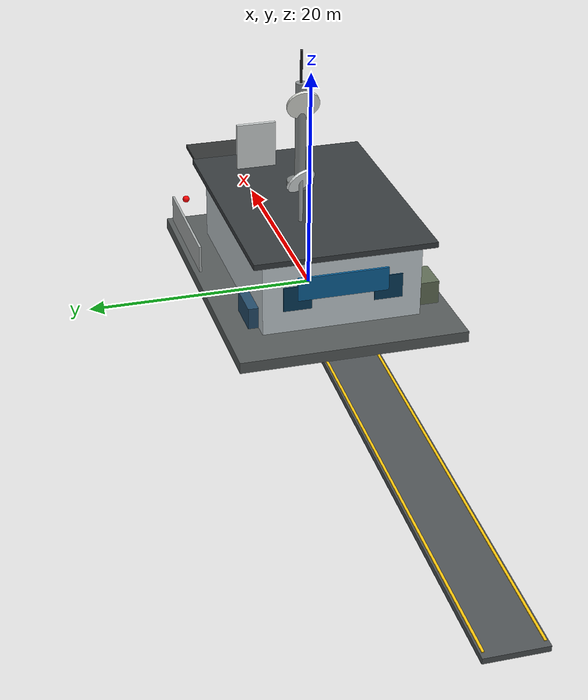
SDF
<?xml version="1.0"?>
<sdf version="1.9">
  <model name="Shore_Command_Base">
    <static>true</static>
    <link name="base_link">
      <!-- 山坡架空基础、控制楼与屋顶。 -->
      <collision name="foundation_collision"><pose>0 0 0.5 0 0 0</pose><geometry><box><size>28 20 1</size></box></geometry></collision>
      <visual name="foundation"><pose>0 0 0.5 0 0 0</pose><geometry><box><size>28 20 1</size></box></geometry><material><ambient>0.16 0.17 0.17 1</ambient><diffuse>0.34 0.36 0.36 1</diffuse></material></visual>
      <collision name="control_building_collision"><pose>0 0 4.2 0 0 0</pose><geometry><box><size>20 14 7.2</size></box></geometry></collision>
      <visual name="control_building"><pose>0 0 4.2 0 0 0</pose><geometry><box><size>20 14 7.2</size></box></geometry><material><ambient>0.52 0.56 0.58 1</ambient><diffuse>0.78 0.82 0.84 1</diffuse><specular>0.25 0.28 0.30 1</specular></material></visual>
      <collision name="roof_collision"><pose>0 0 8 0 0 0</pose><geometry><box><size>22 16 0.5</size></box></geometry></collision>
      <visual name="roof"><pose>0 0 8 0 0 0</pose><geometry><box><size>22 16 0.5</size></box></geometry><material><ambient>0.10 0.11 0.12 1</ambient><diffuse>0.22 0.24 0.25 1</diffuse></material></visual>

      <!-- UAV-USV BASE 标牌用发光面板表示。 -->
      <visual name="UAV_USV_BASE_sign"><pose>-10.15 0 5 0 0 0</pose><geometry><box><size>0.22 8 2.1</size></box></geometry><material><ambient>0.02 0.18 0.30 1</ambient><diffuse>0.04 0.38 0.60 1</diffuse><emissive>0.01 0.12 0.25 1</emissive></material></visual>
      <visual name="window_front"><pose>-10.18 -4 4.2 0 0 0</pose><geometry><box><size>0.12 2.5 2.2</size></box></geometry><material><ambient>0.02 0.10 0.16 1</ambient><diffuse>0.03 0.23 0.36 1</diffuse><specular>0.55 0.65 0.75 1</specular></material></visual>
      <visual name="window_rear"><pose>-10.18 4 4.2 0 0 0</pose><geometry><box><size>0.12 2.5 2.2</size></box></geometry><material><ambient>0.02 0.10 0.16 1</ambient><diffuse>0.03 0.23 0.36 1</diffuse></material></visual>

      <!-- 通信塔、天线和雷达盘均带简化碰撞。 -->
      <collision name="tower_collision"><pose>3 0 13 0 0 0</pose><geometry><cylinder><radius>0.5</radius><length>10</length></cylinder></geometry></collision>
      <visual name="tower"><pose>3 0 13 0 0 0</pose><geometry><cylinder><radius>0.5</radius><length>10</length></cylinder></geometry><material><ambient>0.22 0.23 0.23 1</ambient><diffuse>0.55 0.57 0.57 1</diffuse></material></visual>
      <visual name="radar_pedestal"><pose>3 0 8.5 0 0 0</pose><geometry><cylinder><radius>1.2</radius><length>0.5</length></cylinder></geometry><material><ambient>0.20 0.21 0.21 1</ambient><diffuse>0.48 0.50 0.50 1</diffuse></material></visual>
      <collision name="antenna_collision"><pose>3 0 19.5 0 0 0</pose><geometry><cylinder><radius>0.12</radius><length>3</length></cylinder></geometry></collision>
      <visual name="antenna"><pose>3 0 19.5 0 0 0</pose><geometry><cylinder><radius>0.12</radius><length>3</length></cylinder></geometry><material><ambient>0.05 0.05 0.05 1</ambient><diffuse>0.12 0.12 0.12 1</diffuse></material></visual>
      <collision name="radar_dish_collision"><pose>2.3 0 16.2 0 1.2 0</pose><geometry><cylinder><radius>1.5</radius><length>0.25</length></cylinder></geometry></collision>
      <visual name="radar_dish"><pose>2.3 0 16.2 0 1.2 0</pose><geometry><cylinder><radius>1.5</radius><length>0.25</length></cylinder></geometry><material><ambient>0.68 0.69 0.67 1</ambient><diffuse>0.90 0.91 0.88 1</diffuse></material></visual>

      <!-- 电源箱、通信柜和控制设备。 -->
      <collision name="power_box_collision"><pose>-7 -8 1.8 0 0 0</pose><geometry><box><size>3 2.5 2.6</size></box></geometry></collision>
      <visual name="power_box"><pose>-7 -8 1.8 0 0 0</pose><geometry><box><size>3 2.5 2.6</size></box></geometry><material><ambient>0.18 0.20 0.17 1</ambient><diffuse>0.38 0.43 0.34 1</diffuse></material></visual>
      <collision name="communication_cabinet_collision"><pose>0 -8 1.7 0 0 0</pose><geometry><box><size>3 2.2 2.4</size></box></geometry></collision>
      <visual name="communication_cabinet"><pose>0 -8 1.7 0 0 0</pose><geometry><box><size>3 2.2 2.4</size></box></geometry><material><ambient>0.12 0.15 0.18 1</ambient><diffuse>0.26 0.32 0.38 1</diffuse></material></visual>

      <!-- 连接基地基础与三层平台顶层的缓坡金属栈桥。 -->
      <collision name="platform_bridge_collision"><pose>-24 0 -1.5 0 -0.06 0</pose><geometry><box><size>50 5 0.5</size></box></geometry></collision>
      <visual name="platform_bridge"><pose>-24 0 -1.5 0 -0.06 0</pose><geometry><box><size>50 5 0.5</size></box></geometry><material><ambient>0.14 0.15 0.15 1</ambient><diffuse>0.31 0.33 0.34 1</diffuse><specular>0.4 0.42 0.44 1</specular></material></visual>
      <visual name="bridge_warning_left"><pose>-24 2.25 -1.18 0 -0.06 0</pose><geometry><box><size>49 0.20 0.08</size></box></geometry><material><ambient>0.9 0.58 0.02 1</ambient><diffuse>1 0.78 0.04 1</diffuse></material></visual>
      <visual name="bridge_warning_right"><pose>-24 -2.25 -1.18 0 -0.06 0</pose><geometry><box><size>49 0.20 0.08</size></box></geometry><material><ambient>0.9 0.58 0.02 1</ambient><diffuse>1 0.78 0.04 1</diffuse></material></visual>

      <collision name="security_fence_collision"><pose>8 9.4 2 0 0 0</pose><geometry><box><size>11 0.2 3</size></box></geometry></collision>
      <visual name="security_fence"><pose>8 9.4 2 0 0 0</pose><geometry><box><size>11 0.2 3</size></box></geometry><material><ambient>0.34 0.35 0.35 1</ambient><diffuse>0.68 0.70 0.70 1</diffuse></material></visual>
      <collision name="security_fence_south_collision"><pose>8 -9.4 2 0 0 0</pose><geometry><box><size>11 0.2 3</size></box></geometry></collision>
      <visual name="security_fence_south"><pose>8 -9.4 2 0 0 0</pose><geometry><box><size>11 0.2 3</size></box></geometry><material><ambient>0.34 0.35 0.35 1</ambient><diffuse>0.68 0.70 0.70 1</diffuse></material></visual>

      <!-- 卫星锅、阵列天线和备用电源使基站具备完整通信调度外观。 -->
      <collision name="satellite_mast_collision"><pose>-4 2 10.2 0 0 0</pose><geometry><cylinder><radius>0.18</radius><length>4</length></cylinder></geometry></collision>
      <visual name="satellite_mast"><pose>-4 2 10.2 0 0 0</pose><geometry><cylinder><radius>0.18</radius><length>4</length></cylinder></geometry><material><ambient>0.30 0.31 0.31 1</ambient><diffuse>0.66 0.68 0.68 1</diffuse><specular>0.7 0.7 0.7 1</specular></material></visual>
      <collision name="satellite_dish_collision"><pose>-4 2 12.0 0 1.05 0.4</pose><geometry><cylinder><radius>1.35</radius><length>0.22</length></cylinder></geometry></collision>
      <visual name="satellite_dish"><pose>-4 2 12.0 0 1.05 0.4</pose><geometry><cylinder><radius>1.35</radius><length>0.22</length></cylinder></geometry><material><ambient>0.70 0.72 0.72 1</ambient><diffuse>0.92 0.94 0.94 1</diffuse><specular>0.75 0.78 0.80 1</specular></material></visual>
      <collision name="antenna_array_collision"><pose>7 3 10.8 0 0 0</pose><geometry><box><size>0.35 3.6 4.2</size></box></geometry></collision>
      <visual name="Antenna_Array"><pose>7 3 10.8 0 0 0</pose><geometry><box><size>0.35 3.6 4.2</size></box></geometry><material><ambient>0.42 0.43 0.43 1</ambient><diffuse>0.82 0.84 0.84 1</diffuse><specular>0.7 0.72 0.74 1</specular></material></visual>
      <collision name="backup_generator_collision"><pose>7 -7 2.0 0 0 0</pose><geometry><box><size>4.5 3.0 3.0</size></box></geometry></collision>
      <visual name="backup_generator"><pose>7 -7 2.0 0 0 0</pose><geometry><box><size>4.5 3.0 3.0</size></box></geometry><material><ambient>0.20 0.16 0.06 1</ambient><diffuse>0.42 0.34 0.12 1</diffuse></material></visual>
      <collision name="outside_control_console_collision"><pose>-7 7 1.7 0 0 0</pose><geometry><box><size>3.4 1.8 2.4</size></box></geometry></collision>
      <visual name="outside_control_console"><pose>-7 7 1.7 0 0 0</pose><geometry><box><size>3.4 1.8 2.4</size></box></geometry><material><ambient>0.08 0.16 0.22 1</ambient><diffuse>0.14 0.30 0.42 1</diffuse><specular>0.35 0.40 0.45 1</specular></material></visual>
      <collision name="shore_access_road_collision"><pose>23 0 0.3 0 0 0</pose><geometry><box><size>18 8 0.35</size></box></geometry></collision>
      <visual name="shore_access_road"><pose>23 0 0.3 0 0 0</pose><geometry><box><size>18 8 0.35</size></box></geometry><material><ambient>0.10 0.10 0.10 1</ambient><diffuse>0.20 0.21 0.21 1</diffuse></material></visual>
      <visual name="base_signal_red"><pose>12 8.5 3.8 0 0 0</pose><geometry><sphere><radius>0.32</radius></sphere></geometry><material><ambient>0.8 0.01 0.01 1</ambient><diffuse>1 0.02 0.02 1</diffuse><emissive>1 0.01 0.01 1</emissive></material></visual>
      <visual name="base_signal_green"><pose>12 -8.5 3.8 0 0 0</pose><geometry><sphere><radius>0.32</radius></sphere></geometry><material><ambient>0.01 0.7 0.04 1</ambient><diffuse>0.02 1 0.08 1</diffuse><emissive>0.01 0.9 0.04 1</emissive></material></visual>
      <light name="base_signal_light" type="point"><pose>3 0 21.5 0 0 0</pose><cast_shadows>false</cast_shadows><intensity>2</intensity><diffuse>1 0.04 0.03 1</diffuse><attenuation><range>90</range><constant>0.7</constant><linear>0.025</linear><quadratic>0.001</quadratic></attenuation></light>
      <light name="base_flood_light" type="point"><pose>-8 0 9.5 0 0 0</pose><cast_shadows>false</cast_shadows><intensity>1.8</intensity><diffuse>0.92 0.96 1 1</diffuse><attenuation><range>65</range><constant>0.8</constant><linear>0.035</linear><quadratic>0.0015</quadratic></attenuation></light>
    </link>
  </model>
</sdf>
